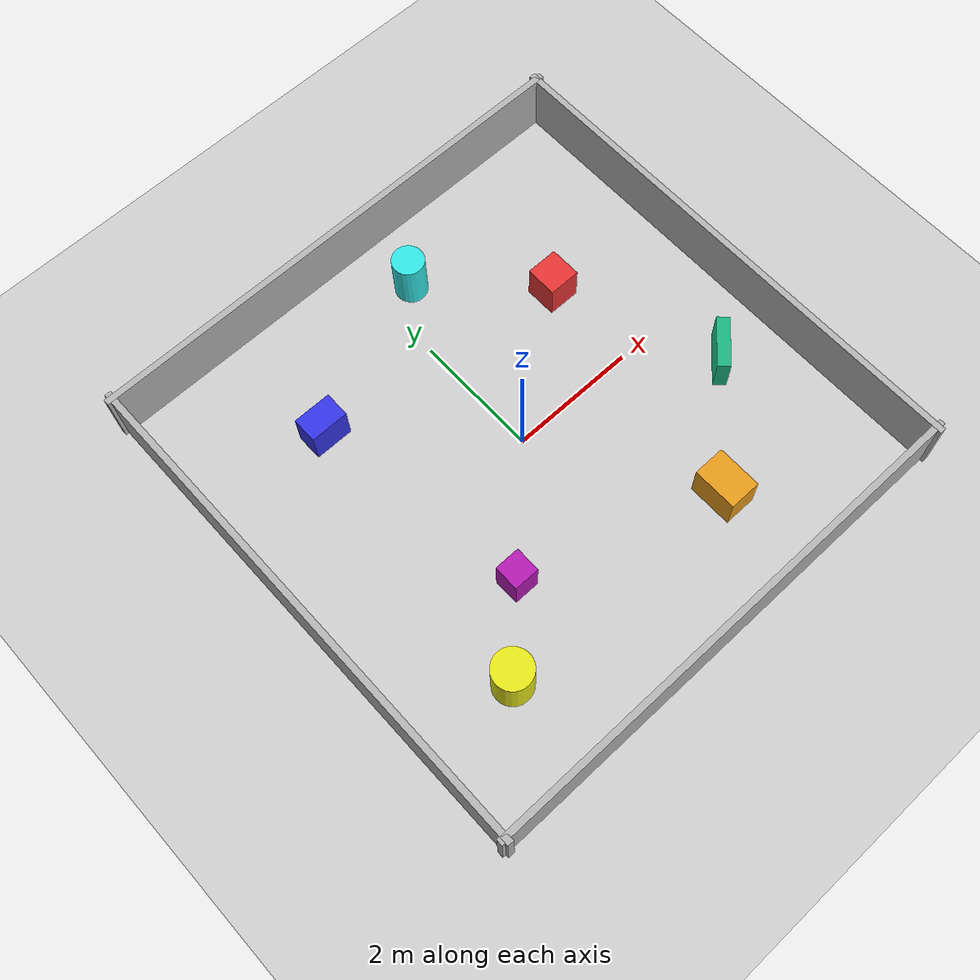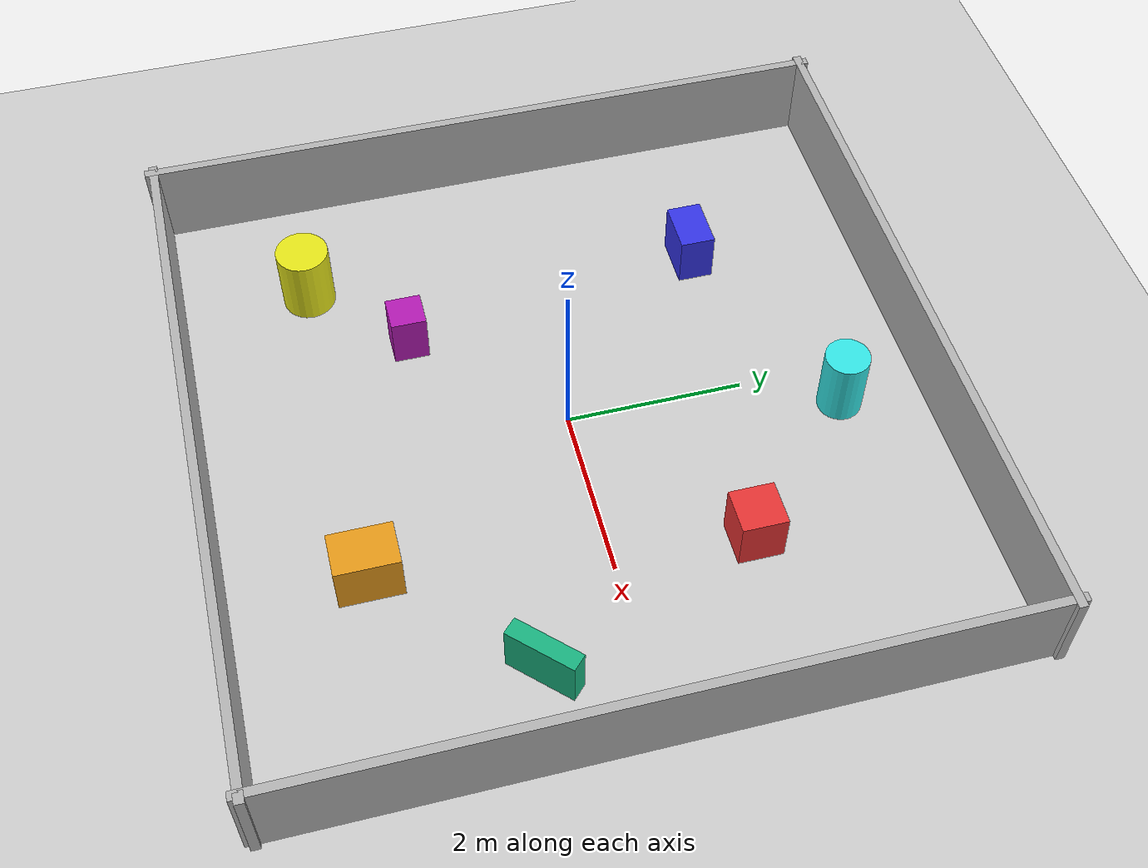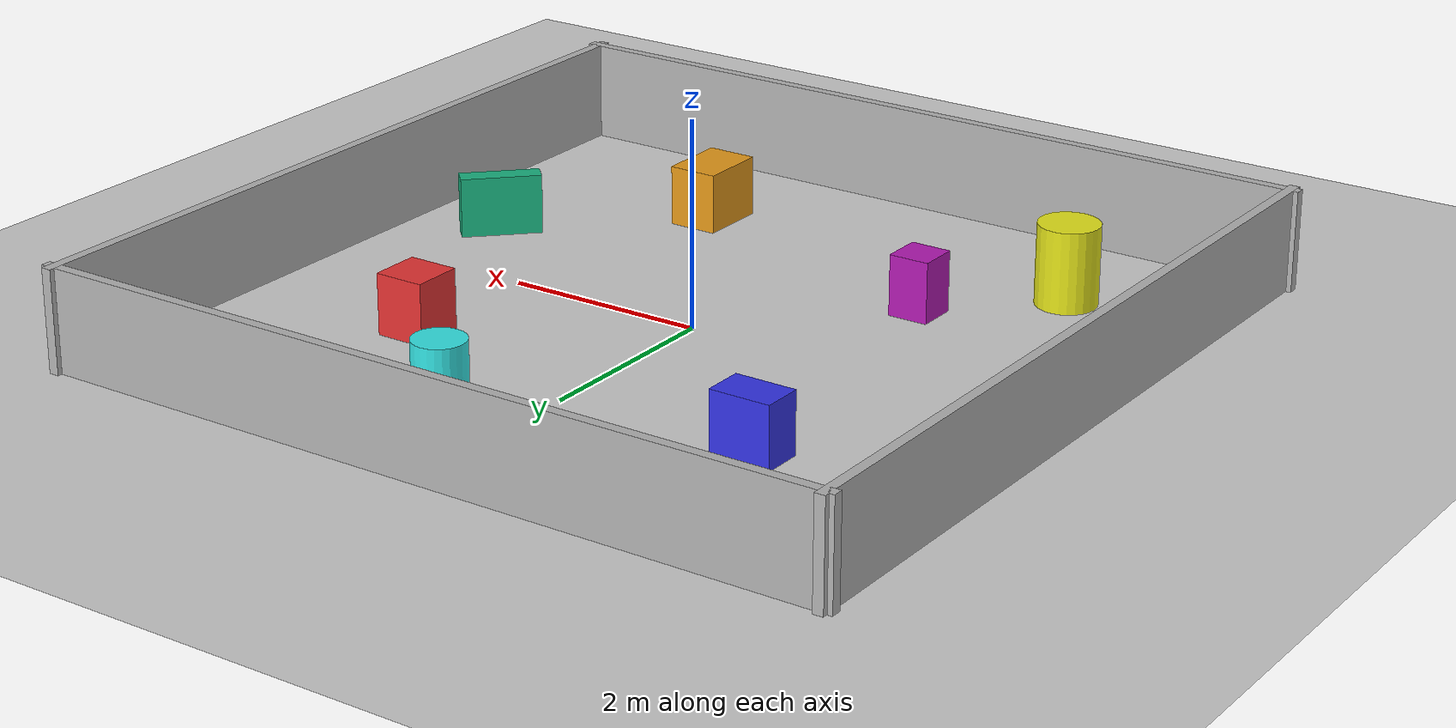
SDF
<?xml version="1.0" ?>
<sdf version="1.6">
  <world name="obstacle_world">

    <!-- ── Physics ─────────────────────────────────────────────────────── -->
    <physics name="default" type="ode" default="true">
      <max_step_size>0.001</max_step_size>
      <real_time_factor>1.0</real_time_factor>
      <real_time_update_rate>1000</real_time_update_rate>
    </physics>

    <!-- ── Lighting ─────────────────────────────────────────────────────── -->
    <light name="sun" type="directional">
      <cast_shadows>true</cast_shadows>
      <pose>0 0 10 0 0 0</pose>
      <diffuse>0.9 0.9 0.9 1</diffuse>
      <specular>0.3 0.3 0.3 1</specular>
      <direction>-0.5 0.1 -0.9</direction>
    </light>

    <!-- ── Ground plane ─────────────────────────────────────────────────── -->
    <model name="ground_plane">
      <static>true</static>
      <link name="link">
        <collision name="col">
          <geometry>
            <plane><normal>0 0 1</normal><size>20 20</size></plane>
          </geometry>
        </collision>
        <visual name="vis">
          <cast_shadows>false</cast_shadows>
          <geometry>
            <plane><normal>0 0 1</normal><size>20 20</size></plane>
          </geometry>
          <material>
            <script>
              <uri>file://media/materials/scripts/gazebo.material</uri>
              <name>Gazebo/Grey</name>
            </script>
          </material>
        </visual>
      </link>
    </model>

    <!-- ── Boundary walls (8 × 8 m arena) ──────────────────────────────── -->
    <model name="wall_north">
      <static>true</static>
      <pose>0 4 0.5 0 0 0</pose>
      <link name="link">
        <collision name="col"><geometry><box><size>8.2 0.1 1</size></box></geometry></collision>
        <visual name="vis">
          <geometry><box><size>8.2 0.1 1</size></box></geometry>
          <material><ambient>0.6 0.6 0.6 1</ambient><diffuse>0.7 0.7 0.7 1</diffuse></material>
        </visual>
      </link>
    </model>

    <model name="wall_south">
      <static>true</static>
      <pose>0 -4 0.5 0 0 0</pose>
      <link name="link">
        <collision name="col"><geometry><box><size>8.2 0.1 1</size></box></geometry></collision>
        <visual name="vis">
          <geometry><box><size>8.2 0.1 1</size></box></geometry>
          <material><ambient>0.6 0.6 0.6 1</ambient><diffuse>0.7 0.7 0.7 1</diffuse></material>
        </visual>
      </link>
    </model>

    <model name="wall_east">
      <static>true</static>
      <pose>4 0 0.5 0 0 0</pose>
      <link name="link">
        <collision name="col"><geometry><box><size>0.1 8.2 1</size></box></geometry></collision>
        <visual name="vis">
          <geometry><box><size>0.1 8.2 1</size></box></geometry>
          <material><ambient>0.6 0.6 0.6 1</ambient><diffuse>0.7 0.7 0.7 1</diffuse></material>
        </visual>
      </link>
    </model>

    <model name="wall_west">
      <static>true</static>
      <pose>-4 0 0.5 0 0 0</pose>
      <link name="link">
        <collision name="col"><geometry><box><size>0.1 8.2 1</size></box></geometry></collision>
        <visual name="vis">
          <geometry><box><size>0.1 8.2 1</size></box></geometry>
          <material><ambient>0.6 0.6 0.6 1</ambient><diffuse>0.7 0.7 0.7 1</diffuse></material>
        </visual>
      </link>
    </model>

    <!-- ── Obstacles ─────────────────────────────────────────────────────── -->

    <model name="box_1">
      <static>true</static>
      <pose>2.0 1.5 0.3 0 0 0</pose>
      <link name="link">
        <collision name="col"><geometry><box><size>0.5 0.5 0.6</size></box></geometry></collision>
        <visual name="vis">
          <geometry><box><size>0.5 0.5 0.6</size></box></geometry>
          <material><ambient>0.8 0.2 0.2 1</ambient><diffuse>0.9 0.2 0.2 1</diffuse></material>
        </visual>
      </link>
    </model>

    <model name="box_2">
      <static>true</static>
      <pose>-2.0 2.0 0.3 0 0 0</pose>
      <link name="link">
        <collision name="col"><geometry><box><size>0.6 0.4 0.6</size></box></geometry></collision>
        <visual name="vis">
          <geometry><box><size>0.6 0.4 0.6</size></box></geometry>
          <material><ambient>0.2 0.2 0.8 1</ambient><diffuse>0.2 0.2 0.9 1</diffuse></material>
        </visual>
      </link>
    </model>

    <model name="box_3">
      <static>true</static>
      <pose>1.5 -2.5 0.3 0 0 0</pose>
      <link name="link">
        <collision name="col"><geometry><box><size>0.5 0.7 0.6</size></box></geometry></collision>
        <visual name="vis">
          <geometry><box><size>0.5 0.7 0.6</size></box></geometry>
          <material><ambient>0.8 0.5 0.1 1</ambient><diffuse>0.9 0.6 0.1 1</diffuse></material>
        </visual>
      </link>
    </model>

    <model name="box_4">
      <static>true</static>
      <pose>-1.5 -1.5 0.3 0 0 0</pose>
      <link name="link">
        <collision name="col"><geometry><box><size>0.4 0.4 0.6</size></box></geometry></collision>
        <visual name="vis">
          <geometry><box><size>0.4 0.4 0.6</size></box></geometry>
          <material><ambient>0.6 0.1 0.6 1</ambient><diffuse>0.7 0.1 0.7 1</diffuse></material>
        </visual>
      </link>
    </model>

    <model name="box_5">
      <static>true</static>
      <pose>3.0 -1.0 0.3 0 0 0.785</pose>
      <link name="link">
        <collision name="col"><geometry><box><size>0.8 0.2 0.6</size></box></geometry></collision>
        <visual name="vis">
          <geometry><box><size>0.8 0.2 0.6</size></box></geometry>
          <material><ambient>0.1 0.6 0.4 1</ambient><diffuse>0.1 0.7 0.5 1</diffuse></material>
        </visual>
      </link>
    </model>

    <model name="cylinder_1">
      <static>true</static>
      <pose>-2.5 -2.5 0.4 0 0 0</pose>
      <link name="link">
        <collision name="col"><geometry><cylinder><radius>0.3</radius><length>0.8</length></cylinder></geometry></collision>
        <visual name="vis">
          <geometry><cylinder><radius>0.3</radius><length>0.8</length></cylinder></geometry>
          <material><ambient>0.9 0.8 0.1 1</ambient><diffuse>0.9 0.9 0.1 1</diffuse></material>
        </visual>
      </link>
    </model>

    <model name="cylinder_2">
      <static>true</static>
      <pose>0.5 3.0 0.4 0 0 0</pose>
      <link name="link">
        <collision name="col"><geometry><cylinder><radius>0.25</radius><length>0.8</length></cylinder></geometry></collision>
        <visual name="vis">
          <geometry><cylinder><radius>0.25</radius><length>0.8</length></cylinder></geometry>
          <material><ambient>0.2 0.9 0.8 1</ambient><diffuse>0.2 0.9 0.9 1</diffuse></material>
        </visual>
      </link>
    </model>

  </world>
</sdf>
